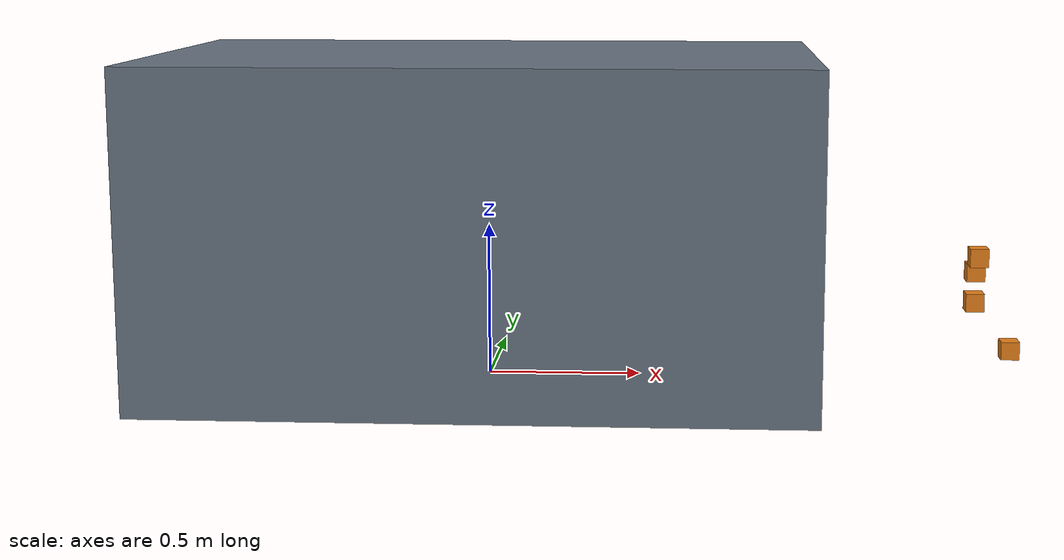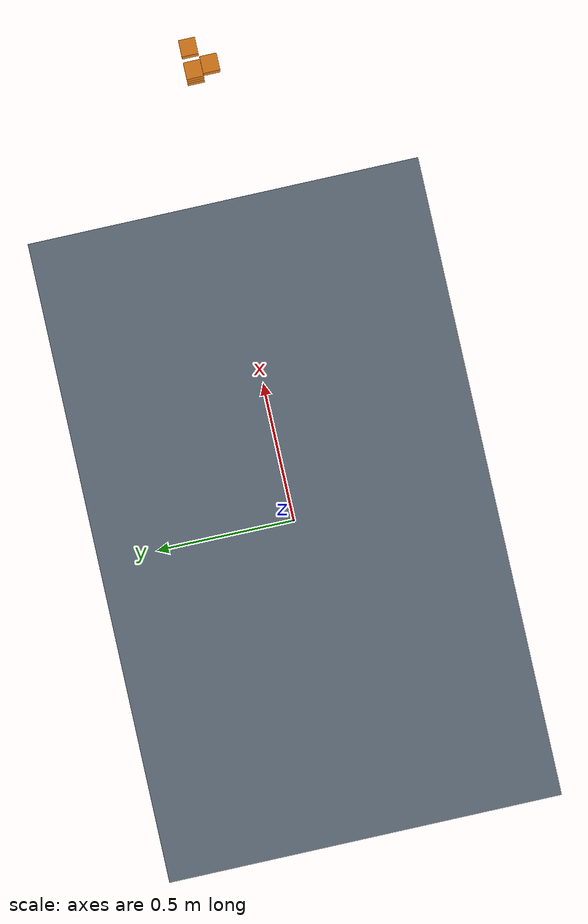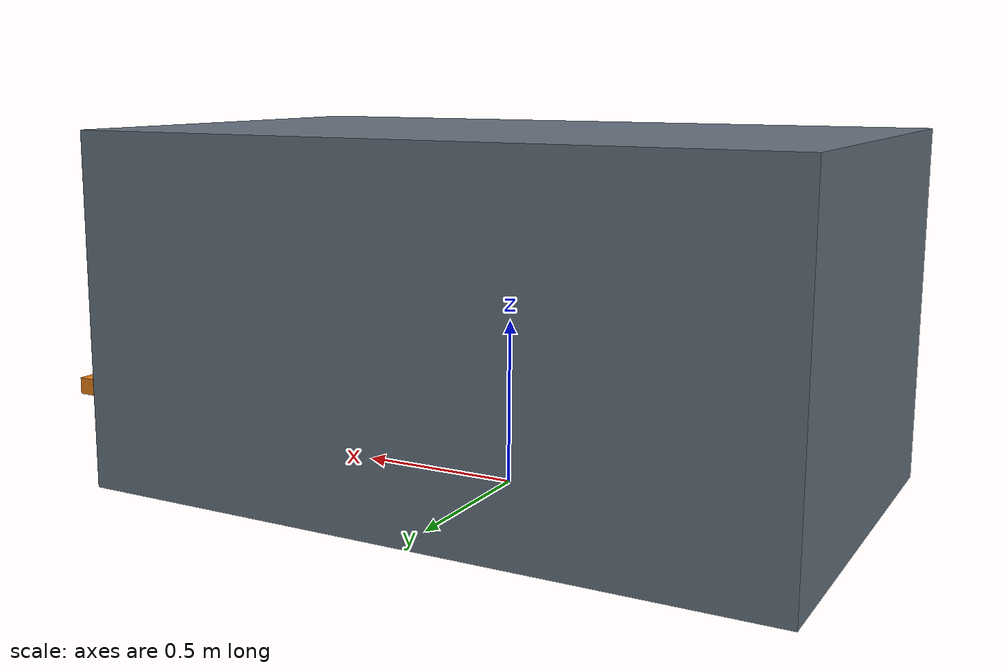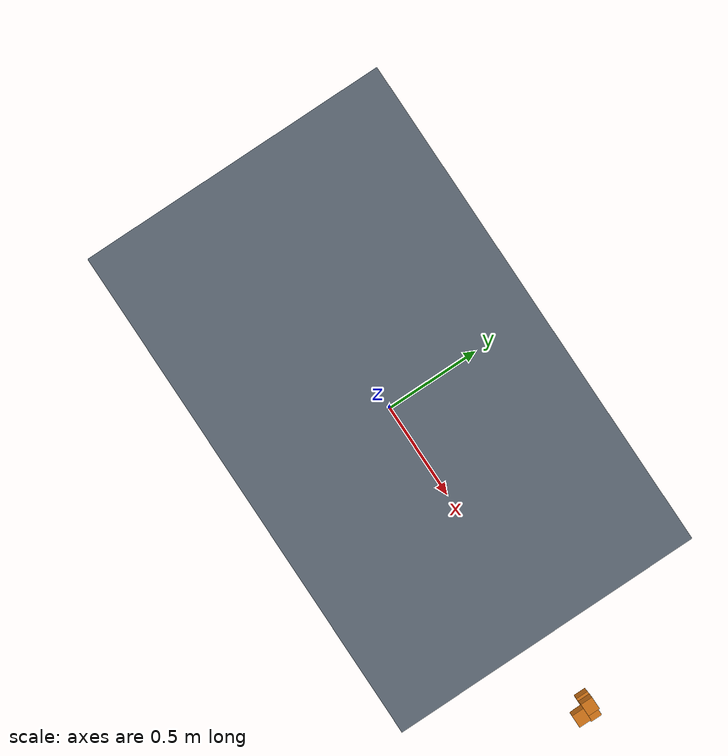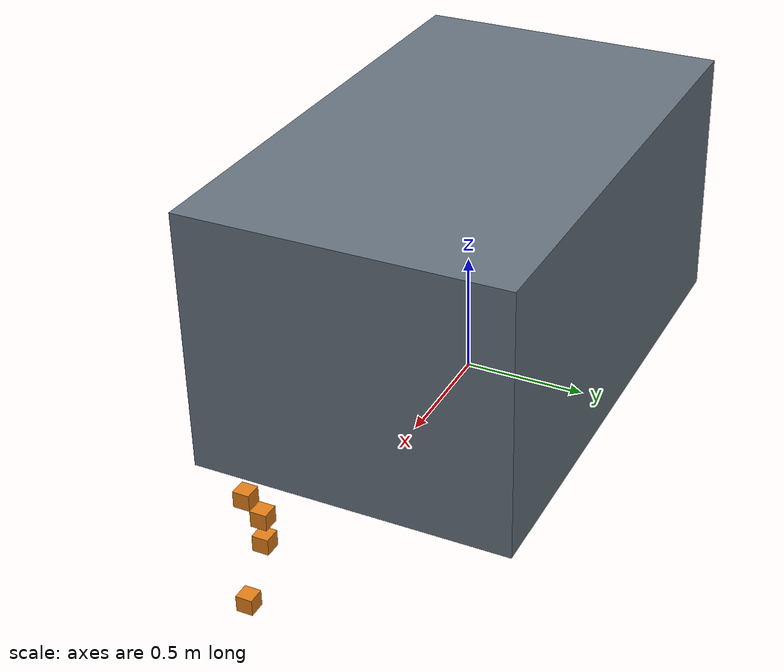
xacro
<?xml version="1.0"?>
<robot xmlns:xacro="http://www.ros.org/wiki/xacro" name="usv">

  <!-- ======================= 可覆盖参数（外参，单位 m / rad） ======================= -->
  <!-- base_link → livox_frame -->
  <xacro:property name="livox_xyz"  value="1.60 0.0 0.36"/>
  <xacro:property name="livox_rpy"  value="0.0 3.14 0.0"/>
  <!-- base_link → imu_link -->
  <!-- base_link → gps_link -->
  <xacro:property name="gps_xyz"    value="-0.03 -0.1 0.01"/>
  <xacro:property name="gps_rpy"    value="0.0 0.0 0.0"/>
  <!-- base_link → camera_link -->
  <xacro:property name="camera_xyz" value="1.72 0.0 0.1"/>
  <xacro:property name="camera_rpy" value="0.0 0.0 0.0"/>
  <!-- base_link → camera_rear_link -->
  <xacro:property name="camera_rear_link_xyz" value="1.60 -0.06 0.42"/>
  <xacro:property name="camera_rear_link_rpy" value="0.0 0.0 0.0"/>
  <!-- base_link → camera_dome_link -->
  <xacro:property name="camera_dome_link_xyz" value="1.60 0.0 0.26"/>
  <xacro:property name="camera_dome_link_rpy" value="0.0 0.0 0.0"/>
  <!-- 船体外形（仅用于 RViz 可视化，可按实际尺寸修改；不影响 TF/导航） -->
  <xacro:property name="hull_length" value="2.12"/>
  <xacro:property name="hull_width"  value="1.30"/>
  <xacro:property name="hull_height" value="1.07"/>

  <material name="usv_hull_gray">
    <color rgba="0.4 0.45 0.5 1.0"/>
  </material>
  <material name="usv_sensor_orange">
    <color rgba="0.9 0.5 0.1 1.0"/>
  </material>

  <!-- ============================== 复用宏：传感器 link ============================== -->
  <!-- 生成一个传感器 link 及其相对 base_link 的 fixed joint -->
  <xacro:macro name="sensor_frame" params="name xyz rpy">
    <link name="${name}">
      <visual>
        <geometry>
          <box size="0.06 0.06 0.06"/>
        </geometry>
        <material name="usv_sensor_orange"/>
      </visual>
    </link>
    <joint name="base_link_to_${name}" type="fixed">
      <parent link="base_link"/>
      <child link="${name}"/>
      <origin xyz="${xyz}" rpy="${rpy}"/>
    </joint>
  </xacro:macro>

  <!-- ================================= base_link ================================= -->
  <link name="base_link">
    <visual>
      <origin xyz="0 0 ${hull_height/2}" rpy="0 0 0"/>
      <geometry>
        <box size="${hull_length} ${hull_width} ${hull_height}"/>
      </geometry>
      <material name="usv_hull_gray"/>
    </visual>
  </link>

  <!-- ================================ 传感器坐标系 ================================ -->
  <xacro:sensor_frame name="livox_frame" xyz="${livox_xyz}"  rpy="${livox_rpy}"/>
  <!-- IMU 由各传感器自带（飞控、激光雷达、相机），无需单独 link -->
  <xacro:sensor_frame name="gps_link"    xyz="${gps_xyz}"    rpy="${gps_rpy}"/>
  <xacro:sensor_frame name="camera_link" xyz="${camera_xyz}" rpy="${camera_rpy}"/>
  <xacro:sensor_frame name="camera_rear_link" xyz="${camera_rear_link_xyz}" rpy="${camera_rear_link_rpy}"/>
  <xacro:sensor_frame name="camera_dome_link" xyz="${camera_dome_link_xyz}" rpy="${camera_dome_link_rpy}"/>

</robot>
